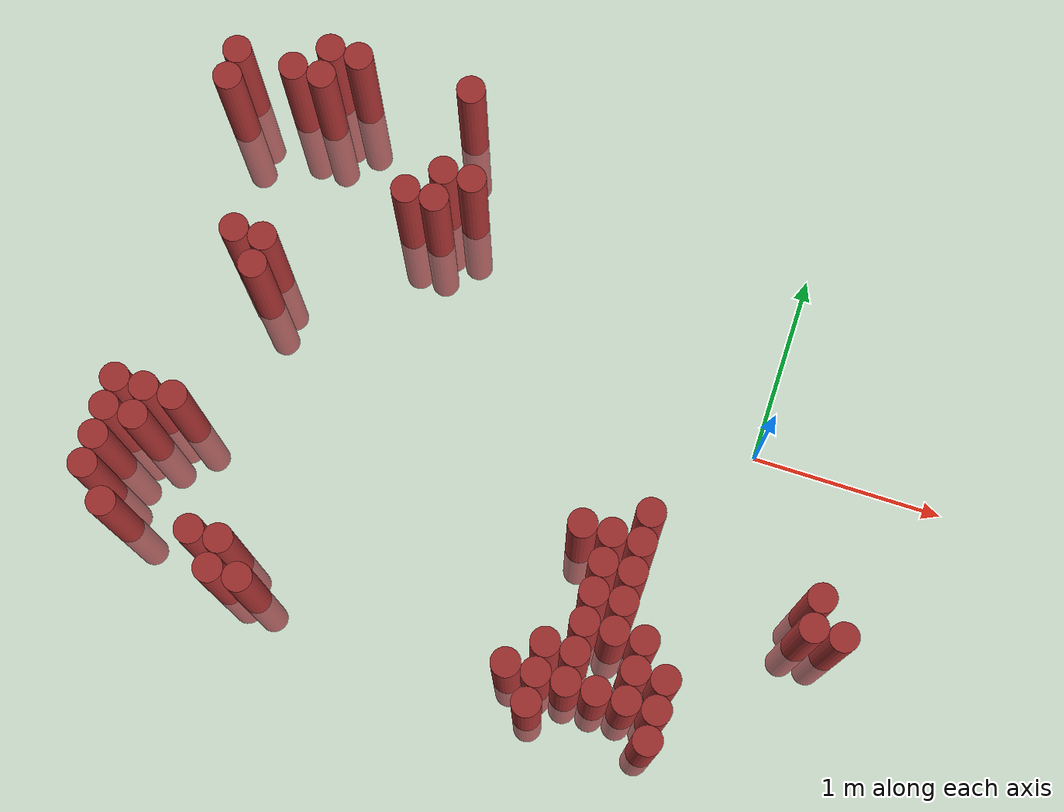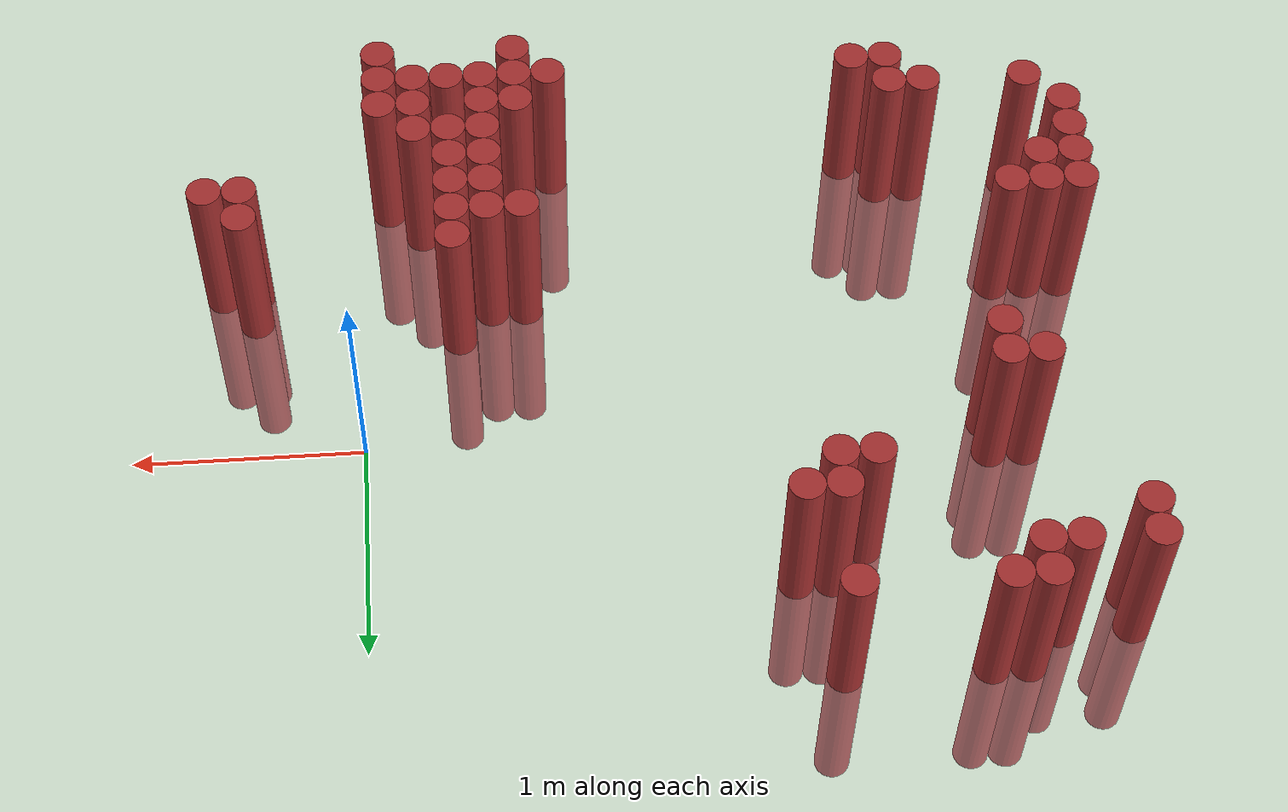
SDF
<sdf version="1.6">
 <world name="default">
  <model name="ground_plane">
   <static>1</static>
   <link name="link">
    <collision name="collision">
     <geometry><plane><normal>0 0 1</normal><size>100 100</size></plane></geometry>
     <surface><friction><ode><mu>100</mu><mu2>50</mu2></ode></friction></surface>
    </collision>
    <visual name="visual">
     <cast_shadows>0</cast_shadows>
     <geometry><plane><normal>0 0 1</normal><size>100 100</size></plane></geometry>
     <material>
      <script><uri>file://media/materials/scripts/gazebo.material</uri><name>Gazebo/Grey</name></script>
     </material>
    </visual>
   </link>
  </model>
  <model name="unit_cylinder_289">
   <static>1</static>
   <pose>-3.125000 -1.175000 0.000000 0.000000 0.000000 0.000000</pose>
   <link name="link">
    <inertial>
     <mass>1</mass>
     <inertia><ixx>0.145833</ixx><ixy>0</ixy><ixz>0</ixz><iyy>0.145833</iyy><iyz>0</iyz><izz>0.125</izz></inertia>
    </inertial>
    <collision name="collision">
     <geometry><cylinder><radius>0.075000</radius><length>1.5</length></cylinder></geometry>
    </collision>
    <visual name="visual">
     <geometry><cylinder><radius>0.075000</radius><length>1.5</length></cylinder></geometry>
     <material>
      <ambient>0.648000 0.192000 0.192000 1</ambient>
      <diffuse>0.648000 0.192000 0.192000 1</diffuse>
     </material>
     <material>
      <script><name>Gazebo/Grey</name><uri>file://media/materials/scripts/gazebo.material</uri></script>
     </material>
    </visual>
   </link>
  </model>
  <model name="unit_cylinder_290">
   <static>1</static>
   <pose>-3.125000 -1.025000 0.000000 0.000000 0.000000 0.000000</pose>
   <link name="link">
    <inertial>
     <mass>1</mass>
     <inertia><ixx>0.145833</ixx><ixy>0</ixy><ixz>0</ixz><iyy>0.145833</iyy><iyz>0</iyz><izz>0.125</izz></inertia>
    </inertial>
    <collision name="collision">
     <geometry><cylinder><radius>0.075000</radius><length>1.5</length></cylinder></geometry>
    </collision>
    <visual name="visual">
     <geometry><cylinder><radius>0.075000</radius><length>1.5</length></cylinder></geometry>
     <material>
      <ambient>0.648000 0.192000 0.192000 1</ambient>
      <diffuse>0.648000 0.192000 0.192000 1</diffuse>
     </material>
     <material>
      <script><name>Gazebo/Grey</name><uri>file://media/materials/scripts/gazebo.material</uri></script>
     </material>
    </visual>
   </link>
  </model>
  <model name="unit_cylinder_291">
   <static>1</static>
   <pose>-3.125000 -0.875000 0.000000 0.000000 0.000000 0.000000</pose>
   <link name="link">
    <inertial>
     <mass>1</mass>
     <inertia><ixx>0.145833</ixx><ixy>0</ixy><ixz>0</ixz><iyy>0.145833</iyy><iyz>0</iyz><izz>0.125</izz></inertia>
    </inertial>
    <collision name="collision">
     <geometry><cylinder><radius>0.075000</radius><length>1.5</length></cylinder></geometry>
    </collision>
    <visual name="visual">
     <geometry><cylinder><radius>0.075000</radius><length>1.5</length></cylinder></geometry>
     <material>
      <ambient>0.648000 0.192000 0.192000 1</ambient>
      <diffuse>0.648000 0.192000 0.192000 1</diffuse>
     </material>
     <material>
      <script><name>Gazebo/Grey</name><uri>file://media/materials/scripts/gazebo.material</uri></script>
     </material>
    </visual>
   </link>
  </model>
  <model name="unit_cylinder_292">
   <static>1</static>
   <pose>-3.125000 -0.725000 0.000000 0.000000 0.000000 0.000000</pose>
   <link name="link">
    <inertial>
     <mass>1</mass>
     <inertia><ixx>0.145833</ixx><ixy>0</ixy><ixz>0</ixz><iyy>0.145833</iyy><iyz>0</iyz><izz>0.125</izz></inertia>
    </inertial>
    <collision name="collision">
     <geometry><cylinder><radius>0.075000</radius><length>1.5</length></cylinder></geometry>
    </collision>
    <visual name="visual">
     <geometry><cylinder><radius>0.075000</radius><length>1.5</length></cylinder></geometry>
     <material>
      <ambient>0.648000 0.192000 0.192000 1</ambient>
      <diffuse>0.648000 0.192000 0.192000 1</diffuse>
     </material>
     <material>
      <script><name>Gazebo/Grey</name><uri>file://media/materials/scripts/gazebo.material</uri></script>
     </material>
    </visual>
   </link>
  </model>
  <model name="unit_cylinder_293">
   <static>1</static>
   <pose>-3.125000 0.925000 0.000000 0.000000 0.000000 0.000000</pose>
   <link name="link">
    <inertial>
     <mass>1</mass>
     <inertia><ixx>0.145833</ixx><ixy>0</ixy><ixz>0</ixz><iyy>0.145833</iyy><iyz>0</iyz><izz>0.125</izz></inertia>
    </inertial>
    <collision name="collision">
     <geometry><cylinder><radius>0.075000</radius><length>1.5</length></cylinder></geometry>
    </collision>
    <visual name="visual">
     <geometry><cylinder><radius>0.075000</radius><length>1.5</length></cylinder></geometry>
     <material>
      <ambient>0.648000 0.192000 0.192000 1</ambient>
      <diffuse>0.648000 0.192000 0.192000 1</diffuse>
     </material>
     <material>
      <script><name>Gazebo/Grey</name><uri>file://media/materials/scripts/gazebo.material</uri></script>
     </material>
    </visual>
   </link>
  </model>
  <model name="unit_cylinder_294">
   <static>1</static>
   <pose>-3.125000 1.075000 0.000000 0.000000 0.000000 0.000000</pose>
   <link name="link">
    <inertial>
     <mass>1</mass>
     <inertia><ixx>0.145833</ixx><ixy>0</ixy><ixz>0</ixz><iyy>0.145833</iyy><iyz>0</iyz><izz>0.125</izz></inertia>
    </inertial>
    <collision name="collision">
     <geometry><cylinder><radius>0.075000</radius><length>1.5</length></cylinder></geometry>
    </collision>
    <visual name="visual">
     <geometry><cylinder><radius>0.075000</radius><length>1.5</length></cylinder></geometry>
     <material>
      <ambient>0.648000 0.192000 0.192000 1</ambient>
      <diffuse>0.648000 0.192000 0.192000 1</diffuse>
     </material>
     <material>
      <script><name>Gazebo/Grey</name><uri>file://media/materials/scripts/gazebo.material</uri></script>
     </material>
    </visual>
   </link>
  </model>
  <model name="unit_cylinder_305">
   <static>1</static>
   <pose>-2.975000 -1.325000 0.000000 0.000000 0.000000 0.000000</pose>
   <link name="link">
    <inertial>
     <mass>1</mass>
     <inertia><ixx>0.145833</ixx><ixy>0</ixy><ixz>0</ixz><iyy>0.145833</iyy><iyz>0</iyz><izz>0.125</izz></inertia>
    </inertial>
    <collision name="collision">
     <geometry><cylinder><radius>0.075000</radius><length>1.5</length></cylinder></geometry>
    </collision>
    <visual name="visual">
     <geometry><cylinder><radius>0.075000</radius><length>1.5</length></cylinder></geometry>
     <material>
      <ambient>0.648000 0.192000 0.192000 1</ambient>
      <diffuse>0.648000 0.192000 0.192000 1</diffuse>
     </material>
     <material>
      <script><name>Gazebo/Grey</name><uri>file://media/materials/scripts/gazebo.material</uri></script>
     </material>
    </visual>
   </link>
  </model>
  <model name="unit_cylinder_306">
   <static>1</static>
   <pose>-2.975000 -0.875000 0.000000 0.000000 0.000000 0.000000</pose>
   <link name="link">
    <inertial>
     <mass>1</mass>
     <inertia><ixx>0.145833</ixx><ixy>0</ixy><ixz>0</ixz><iyy>0.145833</iyy><iyz>0</iyz><izz>0.125</izz></inertia>
    </inertial>
    <collision name="collision">
     <geometry><cylinder><radius>0.075000</radius><length>1.5</length></cylinder></geometry>
    </collision>
    <visual name="visual">
     <geometry><cylinder><radius>0.075000</radius><length>1.5</length></cylinder></geometry>
     <material>
      <ambient>0.648000 0.192000 0.192000 1</ambient>
      <diffuse>0.648000 0.192000 0.192000 1</diffuse>
     </material>
     <material>
      <script><name>Gazebo/Grey</name><uri>file://media/materials/scripts/gazebo.material</uri></script>
     </material>
    </visual>
   </link>
  </model>
  <model name="unit_cylinder_307">
   <static>1</static>
   <pose>-2.975000 -0.725000 0.000000 0.000000 0.000000 0.000000</pose>
   <link name="link">
    <inertial>
     <mass>1</mass>
     <inertia><ixx>0.145833</ixx><ixy>0</ixy><ixz>0</ixz><iyy>0.145833</iyy><iyz>0</iyz><izz>0.125</izz></inertia>
    </inertial>
    <collision name="collision">
     <geometry><cylinder><radius>0.075000</radius><length>1.5</length></cylinder></geometry>
    </collision>
    <visual name="visual">
     <geometry><cylinder><radius>0.075000</radius><length>1.5</length></cylinder></geometry>
     <material>
      <ambient>0.648000 0.192000 0.192000 1</ambient>
      <diffuse>0.648000 0.192000 0.192000 1</diffuse>
     </material>
     <material>
      <script><name>Gazebo/Grey</name><uri>file://media/materials/scripts/gazebo.material</uri></script>
     </material>
    </visual>
   </link>
  </model>
  <model name="unit_cylinder_309">
   <static>1</static>
   <pose>-2.825000 -0.725000 0.000000 0.000000 0.000000 0.000000</pose>
   <link name="link">
    <inertial>
     <mass>1</mass>
     <inertia><ixx>0.145833</ixx><ixy>0</ixy><ixz>0</ixz><iyy>0.145833</iyy><iyz>0</iyz><izz>0.125</izz></inertia>
    </inertial>
    <collision name="collision">
     <geometry><cylinder><radius>0.075000</radius><length>1.5</length></cylinder></geometry>
    </collision>
    <visual name="visual">
     <geometry><cylinder><radius>0.075000</radius><length>1.5</length></cylinder></geometry>
     <material>
      <ambient>0.648000 0.192000 0.192000 1</ambient>
      <diffuse>0.648000 0.192000 0.192000 1</diffuse>
     </material>
     <material>
      <script><name>Gazebo/Grey</name><uri>file://media/materials/scripts/gazebo.material</uri></script>
     </material>
    </visual>
   </link>
  </model>
  <model name="unit_cylinder_310">
   <static>1</static>
   <pose>-2.825000 0.175000 0.000000 0.000000 0.000000 0.000000</pose>
   <link name="link">
    <inertial>
     <mass>1</mass>
     <inertia><ixx>0.145833</ixx><ixy>0</ixy><ixz>0</ixz><iyy>0.145833</iyy><iyz>0</iyz><izz>0.125</izz></inertia>
    </inertial>
    <collision name="collision">
     <geometry><cylinder><radius>0.075000</radius><length>1.5</length></cylinder></geometry>
    </collision>
    <visual name="visual">
     <geometry><cylinder><radius>0.075000</radius><length>1.5</length></cylinder></geometry>
     <material>
      <ambient>0.648000 0.192000 0.192000 1</ambient>
      <diffuse>0.648000 0.192000 0.192000 1</diffuse>
     </material>
     <material>
      <script><name>Gazebo/Grey</name><uri>file://media/materials/scripts/gazebo.material</uri></script>
     </material>
    </visual>
   </link>
  </model>
  <model name="unit_cylinder_311">
   <static>1</static>
   <pose>-2.825000 1.075000 0.000000 0.000000 0.000000 0.000000</pose>
   <link name="link">
    <inertial>
     <mass>1</mass>
     <inertia><ixx>0.145833</ixx><ixy>0</ixy><ixz>0</ixz><iyy>0.145833</iyy><iyz>0</iyz><izz>0.125</izz></inertia>
    </inertial>
    <collision name="collision">
     <geometry><cylinder><radius>0.075000</radius><length>1.5</length></cylinder></geometry>
    </collision>
    <visual name="visual">
     <geometry><cylinder><radius>0.075000</radius><length>1.5</length></cylinder></geometry>
     <material>
      <ambient>0.648000 0.192000 0.192000 1</ambient>
      <diffuse>0.648000 0.192000 0.192000 1</diffuse>
     </material>
     <material>
      <script><name>Gazebo/Grey</name><uri>file://media/materials/scripts/gazebo.material</uri></script>
     </material>
    </visual>
   </link>
  </model>
  <model name="unit_cylinder_312">
   <static>1</static>
   <pose>-2.675000 0.025000 0.000000 0.000000 0.000000 0.000000</pose>
   <link name="link">
    <inertial>
     <mass>1</mass>
     <inertia><ixx>0.145833</ixx><ixy>0</ixy><ixz>0</ixz><iyy>0.145833</iyy><iyz>0</iyz><izz>0.125</izz></inertia>
    </inertial>
    <collision name="collision">
     <geometry><cylinder><radius>0.075000</radius><length>1.5</length></cylinder></geometry>
    </collision>
    <visual name="visual">
     <geometry><cylinder><radius>0.075000</radius><length>1.5</length></cylinder></geometry>
     <material>
      <ambient>0.648000 0.192000 0.192000 1</ambient>
      <diffuse>0.648000 0.192000 0.192000 1</diffuse>
     </material>
     <material>
      <script><name>Gazebo/Grey</name><uri>file://media/materials/scripts/gazebo.material</uri></script>
     </material>
    </visual>
   </link>
  </model>
  <model name="unit_cylinder_313">
   <static>1</static>
   <pose>-2.675000 0.175000 0.000000 0.000000 0.000000 0.000000</pose>
   <link name="link">
    <inertial>
     <mass>1</mass>
     <inertia><ixx>0.145833</ixx><ixy>0</ixy><ixz>0</ixz><iyy>0.145833</iyy><iyz>0</iyz><izz>0.125</izz></inertia>
    </inertial>
    <collision name="collision">
     <geometry><cylinder><radius>0.075000</radius><length>1.5</length></cylinder></geometry>
    </collision>
    <visual name="visual">
     <geometry><cylinder><radius>0.075000</radius><length>1.5</length></cylinder></geometry>
     <material>
      <ambient>0.648000 0.192000 0.192000 1</ambient>
      <diffuse>0.648000 0.192000 0.192000 1</diffuse>
     </material>
     <material>
      <script><name>Gazebo/Grey</name><uri>file://media/materials/scripts/gazebo.material</uri></script>
     </material>
    </visual>
   </link>
  </model>
  <model name="unit_cylinder_314">
   <static>1</static>
   <pose>-2.675000 1.075000 0.000000 0.000000 0.000000 0.000000</pose>
   <link name="link">
    <inertial>
     <mass>1</mass>
     <inertia><ixx>0.145833</ixx><ixy>0</ixy><ixz>0</ixz><iyy>0.145833</iyy><iyz>0</iyz><izz>0.125</izz></inertia>
    </inertial>
    <collision name="collision">
     <geometry><cylinder><radius>0.075000</radius><length>1.5</length></cylinder></geometry>
    </collision>
    <visual name="visual">
     <geometry><cylinder><radius>0.075000</radius><length>1.5</length></cylinder></geometry>
     <material>
      <ambient>0.648000 0.192000 0.192000 1</ambient>
      <diffuse>0.648000 0.192000 0.192000 1</diffuse>
     </material>
     <material>
      <script><name>Gazebo/Grey</name><uri>file://media/materials/scripts/gazebo.material</uri></script>
     </material>
    </visual>
   </link>
  </model>
  <model name="unit_cylinder_315">
   <static>1</static>
   <pose>-2.675000 1.225000 0.000000 0.000000 0.000000 0.000000</pose>
   <link name="link">
    <inertial>
     <mass>1</mass>
     <inertia><ixx>0.145833</ixx><ixy>0</ixy><ixz>0</ixz><iyy>0.145833</iyy><iyz>0</iyz><izz>0.125</izz></inertia>
    </inertial>
    <collision name="collision">
     <geometry><cylinder><radius>0.075000</radius><length>1.5</length></cylinder></geometry>
    </collision>
    <visual name="visual">
     <geometry><cylinder><radius>0.075000</radius><length>1.5</length></cylinder></geometry>
     <material>
      <ambient>0.648000 0.192000 0.192000 1</ambient>
      <diffuse>0.648000 0.192000 0.192000 1</diffuse>
     </material>
     <material>
      <script><name>Gazebo/Grey</name><uri>file://media/materials/scripts/gazebo.material</uri></script>
     </material>
    </visual>
   </link>
  </model>
  <model name="unit_cylinder_317">
   <static>1</static>
   <pose>-2.525000 -1.325000 0.000000 0.000000 0.000000 0.000000</pose>
   <link name="link">
    <inertial>
     <mass>1</mass>
     <inertia><ixx>0.145833</ixx><ixy>0</ixy><ixz>0</ixz><iyy>0.145833</iyy><iyz>0</iyz><izz>0.125</izz></inertia>
    </inertial>
    <collision name="collision">
     <geometry><cylinder><radius>0.075000</radius><length>1.5</length></cylinder></geometry>
    </collision>
    <visual name="visual">
     <geometry><cylinder><radius>0.075000</radius><length>1.5</length></cylinder></geometry>
     <material>
      <ambient>0.648000 0.192000 0.192000 1</ambient>
      <diffuse>0.648000 0.192000 0.192000 1</diffuse>
     </material>
     <material>
      <script><name>Gazebo/Grey</name><uri>file://media/materials/scripts/gazebo.material</uri></script>
     </material>
    </visual>
   </link>
  </model>
  <model name="unit_cylinder_318">
   <static>1</static>
   <pose>-2.525000 1.225000 0.000000 0.000000 0.000000 0.000000</pose>
   <link name="link">
    <inertial>
     <mass>1</mass>
     <inertia><ixx>0.145833</ixx><ixy>0</ixy><ixz>0</ixz><iyy>0.145833</iyy><iyz>0</iyz><izz>0.125</izz></inertia>
    </inertial>
    <collision name="collision">
     <geometry><cylinder><radius>0.075000</radius><length>1.5</length></cylinder></geometry>
    </collision>
    <visual name="visual">
     <geometry><cylinder><radius>0.075000</radius><length>1.5</length></cylinder></geometry>
     <material>
      <ambient>0.648000 0.192000 0.192000 1</ambient>
      <diffuse>0.648000 0.192000 0.192000 1</diffuse>
     </material>
     <material>
      <script><name>Gazebo/Grey</name><uri>file://media/materials/scripts/gazebo.material</uri></script>
     </material>
    </visual>
   </link>
  </model>
  <model name="unit_cylinder_323">
   <static>1</static>
   <pose>-2.375000 -1.475000 0.000000 0.000000 0.000000 0.000000</pose>
   <link name="link">
    <inertial>
     <mass>1</mass>
     <inertia><ixx>0.145833</ixx><ixy>0</ixy><ixz>0</ixz><iyy>0.145833</iyy><iyz>0</iyz><izz>0.125</izz></inertia>
    </inertial>
    <collision name="collision">
     <geometry><cylinder><radius>0.075000</radius><length>1.5</length></cylinder></geometry>
    </collision>
    <visual name="visual">
     <geometry><cylinder><radius>0.075000</radius><length>1.5</length></cylinder></geometry>
     <material>
      <ambient>0.648000 0.192000 0.192000 1</ambient>
      <diffuse>0.648000 0.192000 0.192000 1</diffuse>
     </material>
     <material>
      <script><name>Gazebo/Grey</name><uri>file://media/materials/scripts/gazebo.material</uri></script>
     </material>
    </visual>
   </link>
  </model>
  <model name="unit_cylinder_324">
   <static>1</static>
   <pose>-2.375000 -1.325000 0.000000 0.000000 0.000000 0.000000</pose>
   <link name="link">
    <inertial>
     <mass>1</mass>
     <inertia><ixx>0.145833</ixx><ixy>0</ixy><ixz>0</ixz><iyy>0.145833</iyy><iyz>0</iyz><izz>0.125</izz></inertia>
    </inertial>
    <collision name="collision">
     <geometry><cylinder><radius>0.075000</radius><length>1.5</length></cylinder></geometry>
    </collision>
    <visual name="visual">
     <geometry><cylinder><radius>0.075000</radius><length>1.5</length></cylinder></geometry>
     <material>
      <ambient>0.648000 0.192000 0.192000 1</ambient>
      <diffuse>0.648000 0.192000 0.192000 1</diffuse>
     </material>
     <material>
      <script><name>Gazebo/Grey</name><uri>file://media/materials/scripts/gazebo.material</uri></script>
     </material>
    </visual>
   </link>
  </model>
  <model name="unit_cylinder_327">
   <static>1</static>
   <pose>-2.225000 -1.475000 0.000000 0.000000 0.000000 0.000000</pose>
   <link name="link">
    <inertial>
     <mass>1</mass>
     <inertia><ixx>0.145833</ixx><ixy>0</ixy><ixz>0</ixz><iyy>0.145833</iyy><iyz>0</iyz><izz>0.125</izz></inertia>
    </inertial>
    <collision name="collision">
     <geometry><cylinder><radius>0.075000</radius><length>1.5</length></cylinder></geometry>
    </collision>
    <visual name="visual">
     <geometry><cylinder><radius>0.075000</radius><length>1.5</length></cylinder></geometry>
     <material>
      <ambient>0.648000 0.192000 0.192000 1</ambient>
      <diffuse>0.648000 0.192000 0.192000 1</diffuse>
     </material>
     <material>
      <script><name>Gazebo/Grey</name><uri>file://media/materials/scripts/gazebo.material</uri></script>
     </material>
    </visual>
   </link>
  </model>
  <model name="unit_cylinder_331">
   <static>1</static>
   <pose>-2.075000 0.625000 0.000000 0.000000 0.000000 0.000000</pose>
   <link name="link">
    <inertial>
     <mass>1</mass>
     <inertia><ixx>0.145833</ixx><ixy>0</ixy><ixz>0</ixz><iyy>0.145833</iyy><iyz>0</iyz><izz>0.125</izz></inertia>
    </inertial>
    <collision name="collision">
     <geometry><cylinder><radius>0.075000</radius><length>1.5</length></cylinder></geometry>
    </collision>
    <visual name="visual">
     <geometry><cylinder><radius>0.075000</radius><length>1.5</length></cylinder></geometry>
     <material>
      <ambient>0.648000 0.192000 0.192000 1</ambient>
      <diffuse>0.648000 0.192000 0.192000 1</diffuse>
     </material>
     <material>
      <script><name>Gazebo/Grey</name><uri>file://media/materials/scripts/gazebo.material</uri></script>
     </material>
    </visual>
   </link>
  </model>
  <model name="unit_cylinder_333">
   <static>1</static>
   <pose>-1.925000 0.625000 0.000000 0.000000 0.000000 0.000000</pose>
   <link name="link">
    <inertial>
     <mass>1</mass>
     <inertia><ixx>0.145833</ixx><ixy>0</ixy><ixz>0</ixz><iyy>0.145833</iyy><iyz>0</iyz><izz>0.125</izz></inertia>
    </inertial>
    <collision name="collision">
     <geometry><cylinder><radius>0.075000</radius><length>1.5</length></cylinder></geometry>
    </collision>
    <visual name="visual">
     <geometry><cylinder><radius>0.075000</radius><length>1.5</length></cylinder></geometry>
     <material>
      <ambient>0.648000 0.192000 0.192000 1</ambient>
      <diffuse>0.648000 0.192000 0.192000 1</diffuse>
     </material>
     <material>
      <script><name>Gazebo/Grey</name><uri>file://media/materials/scripts/gazebo.material</uri></script>
     </material>
    </visual>
   </link>
  </model>
  <model name="unit_cylinder_334">
   <static>1</static>
   <pose>-1.925000 0.775000 0.000000 0.000000 0.000000 0.000000</pose>
   <link name="link">
    <inertial>
     <mass>1</mass>
     <inertia><ixx>0.145833</ixx><ixy>0</ixy><ixz>0</ixz><iyy>0.145833</iyy><iyz>0</iyz><izz>0.125</izz></inertia>
    </inertial>
    <collision name="collision">
     <geometry><cylinder><radius>0.075000</radius><length>1.5</length></cylinder></geometry>
    </collision>
    <visual name="visual">
     <geometry><cylinder><radius>0.075000</radius><length>1.5</length></cylinder></geometry>
     <material>
      <ambient>0.648000 0.192000 0.192000 1</ambient>
      <diffuse>0.648000 0.192000 0.192000 1</diffuse>
     </material>
     <material>
      <script><name>Gazebo/Grey</name><uri>file://media/materials/scripts/gazebo.material</uri></script>
     </material>
    </visual>
   </link>
  </model>
  <model name="unit_cylinder_335">
   <static>1</static>
   <pose>-1.925000 1.225000 0.000000 0.000000 0.000000 0.000000</pose>
   <link name="link">
    <inertial>
     <mass>1</mass>
     <inertia><ixx>0.145833</ixx><ixy>0</ixy><ixz>0</ixz><iyy>0.145833</iyy><iyz>0</iyz><izz>0.125</izz></inertia>
    </inertial>
    <collision name="collision">
     <geometry><cylinder><radius>0.075000</radius><length>1.5</length></cylinder></geometry>
    </collision>
    <visual name="visual">
     <geometry><cylinder><radius>0.075000</radius><length>1.5</length></cylinder></geometry>
     <material>
      <ambient>0.648000 0.192000 0.192000 1</ambient>
      <diffuse>0.648000 0.192000 0.192000 1</diffuse>
     </material>
     <material>
      <script><name>Gazebo/Grey</name><uri>file://media/materials/scripts/gazebo.material</uri></script>
     </material>
    </visual>
   </link>
  </model>
  <model name="unit_cylinder_337">
   <static>1</static>
   <pose>-1.775000 0.775000 0.000000 0.000000 0.000000 0.000000</pose>
   <link name="link">
    <inertial>
     <mass>1</mass>
     <inertia><ixx>0.145833</ixx><ixy>0</ixy><ixz>0</ixz><iyy>0.145833</iyy><iyz>0</iyz><izz>0.125</izz></inertia>
    </inertial>
    <collision name="collision">
     <geometry><cylinder><radius>0.075000</radius><length>1.5</length></cylinder></geometry>
    </collision>
    <visual name="visual">
     <geometry><cylinder><radius>0.075000</radius><length>1.5</length></cylinder></geometry>
     <material>
      <ambient>0.648000 0.192000 0.192000 1</ambient>
      <diffuse>0.648000 0.192000 0.192000 1</diffuse>
     </material>
     <material>
      <script><name>Gazebo/Grey</name><uri>file://media/materials/scripts/gazebo.material</uri></script>
     </material>
    </visual>
   </link>
  </model>
  <model name="unit_cylinder_353">
   <static>1</static>
   <pose>-0.875000 -1.475000 0.000000 0.000000 0.000000 0.000000</pose>
   <link name="link">
    <inertial>
     <mass>1</mass>
     <inertia><ixx>0.145833</ixx><ixy>0</ixy><ixz>0</ixz><iyy>0.145833</iyy><iyz>0</iyz><izz>0.125</izz></inertia>
    </inertial>
    <collision name="collision">
     <geometry><cylinder><radius>0.075000</radius><length>1.5</length></cylinder></geometry>
    </collision>
    <visual name="visual">
     <geometry><cylinder><radius>0.075000</radius><length>1.5</length></cylinder></geometry>
     <material>
      <ambient>0.648000 0.192000 0.192000 1</ambient>
      <diffuse>0.648000 0.192000 0.192000 1</diffuse>
     </material>
     <material>
      <script><name>Gazebo/Grey</name><uri>file://media/materials/scripts/gazebo.material</uri></script>
     </material>
    </visual>
   </link>
  </model>
  <model name="unit_cylinder_354">
   <static>1</static>
   <pose>-0.725000 -1.625000 0.000000 0.000000 0.000000 0.000000</pose>
   <link name="link">
    <inertial>
     <mass>1</mass>
     <inertia><ixx>0.145833</ixx><ixy>0</ixy><ixz>0</ixz><iyy>0.145833</iyy><iyz>0</iyz><izz>0.125</izz></inertia>
    </inertial>
    <collision name="collision">
     <geometry><cylinder><radius>0.075000</radius><length>1.5</length></cylinder></geometry>
    </collision>
    <visual name="visual">
     <geometry><cylinder><radius>0.075000</radius><length>1.5</length></cylinder></geometry>
     <material>
      <ambient>0.648000 0.192000 0.192000 1</ambient>
      <diffuse>0.648000 0.192000 0.192000 1</diffuse>
     </material>
     <material>
      <script><name>Gazebo/Grey</name><uri>file://media/materials/scripts/gazebo.material</uri></script>
     </material>
    </visual>
   </link>
  </model>
  <model name="unit_cylinder_355">
   <static>1</static>
   <pose>-0.725000 -1.475000 0.000000 0.000000 0.000000 0.000000</pose>
   <link name="link">
    <inertial>
     <mass>1</mass>
     <inertia><ixx>0.145833</ixx><ixy>0</ixy><ixz>0</ixz><iyy>0.145833</iyy><iyz>0</iyz><izz>0.125</izz></inertia>
    </inertial>
    <collision name="collision">
     <geometry><cylinder><radius>0.075000</radius><length>1.5</length></cylinder></geometry>
    </collision>
    <visual name="visual">
     <geometry><cylinder><radius>0.075000</radius><length>1.5</length></cylinder></geometry>
     <material>
      <ambient>0.648000 0.192000 0.192000 1</ambient>
      <diffuse>0.648000 0.192000 0.192000 1</diffuse>
     </material>
     <material>
      <script><name>Gazebo/Grey</name><uri>file://media/materials/scripts/gazebo.material</uri></script>
     </material>
    </visual>
   </link>
  </model>
  <model name="unit_cylinder_356">
   <static>1</static>
   <pose>-0.725000 -1.325000 0.000000 0.000000 0.000000 0.000000</pose>
   <link name="link">
    <inertial>
     <mass>1</mass>
     <inertia><ixx>0.145833</ixx><ixy>0</ixy><ixz>0</ixz><iyy>0.145833</iyy><iyz>0</iyz><izz>0.125</izz></inertia>
    </inertial>
    <collision name="collision">
     <geometry><cylinder><radius>0.075000</radius><length>1.5</length></cylinder></geometry>
    </collision>
    <visual name="visual">
     <geometry><cylinder><radius>0.075000</radius><length>1.5</length></cylinder></geometry>
     <material>
      <ambient>0.648000 0.192000 0.192000 1</ambient>
      <diffuse>0.648000 0.192000 0.192000 1</diffuse>
     </material>
     <material>
      <script><name>Gazebo/Grey</name><uri>file://media/materials/scripts/gazebo.material</uri></script>
     </material>
    </visual>
   </link>
  </model>
  <model name="unit_cylinder_357">
   <static>1</static>
   <pose>-0.725000 -0.725000 0.000000 0.000000 0.000000 0.000000</pose>
   <link name="link">
    <inertial>
     <mass>1</mass>
     <inertia><ixx>0.145833</ixx><ixy>0</ixy><ixz>0</ixz><iyy>0.145833</iyy><iyz>0</iyz><izz>0.125</izz></inertia>
    </inertial>
    <collision name="collision">
     <geometry><cylinder><radius>0.075000</radius><length>1.5</length></cylinder></geometry>
    </collision>
    <visual name="visual">
     <geometry><cylinder><radius>0.075000</radius><length>1.5</length></cylinder></geometry>
     <material>
      <ambient>0.648000 0.192000 0.192000 1</ambient>
      <diffuse>0.648000 0.192000 0.192000 1</diffuse>
     </material>
     <material>
      <script><name>Gazebo/Grey</name><uri>file://media/materials/scripts/gazebo.material</uri></script>
     </material>
    </visual>
   </link>
  </model>
  <model name="unit_cylinder_358">
   <static>1</static>
   <pose>-0.575000 -1.475000 0.000000 0.000000 0.000000 0.000000</pose>
   <link name="link">
    <inertial>
     <mass>1</mass>
     <inertia><ixx>0.145833</ixx><ixy>0</ixy><ixz>0</ixz><iyy>0.145833</iyy><iyz>0</iyz><izz>0.125</izz></inertia>
    </inertial>
    <collision name="collision">
     <geometry><cylinder><radius>0.075000</radius><length>1.5</length></cylinder></geometry>
    </collision>
    <visual name="visual">
     <geometry><cylinder><radius>0.075000</radius><length>1.5</length></cylinder></geometry>
     <material>
      <ambient>0.648000 0.192000 0.192000 1</ambient>
      <diffuse>0.648000 0.192000 0.192000 1</diffuse>
     </material>
     <material>
      <script><name>Gazebo/Grey</name><uri>file://media/materials/scripts/gazebo.material</uri></script>
     </material>
    </visual>
   </link>
  </model>
  <model name="unit_cylinder_359">
   <static>1</static>
   <pose>-0.575000 -1.325000 0.000000 0.000000 0.000000 0.000000</pose>
   <link name="link">
    <inertial>
     <mass>1</mass>
     <inertia><ixx>0.145833</ixx><ixy>0</ixy><ixz>0</ixz><iyy>0.145833</iyy><iyz>0</iyz><izz>0.125</izz></inertia>
    </inertial>
    <collision name="collision">
     <geometry><cylinder><radius>0.075000</radius><length>1.5</length></cylinder></geometry>
    </collision>
    <visual name="visual">
     <geometry><cylinder><radius>0.075000</radius><length>1.5</length></cylinder></geometry>
     <material>
      <ambient>0.648000 0.192000 0.192000 1</ambient>
      <diffuse>0.648000 0.192000 0.192000 1</diffuse>
     </material>
     <material>
      <script><name>Gazebo/Grey</name><uri>file://media/materials/scripts/gazebo.material</uri></script>
     </material>
    </visual>
   </link>
  </model>
  <model name="unit_cylinder_360">
   <static>1</static>
   <pose>-0.575000 -1.175000 0.000000 0.000000 0.000000 0.000000</pose>
   <link name="link">
    <inertial>
     <mass>1</mass>
     <inertia><ixx>0.145833</ixx><ixy>0</ixy><ixz>0</ixz><iyy>0.145833</iyy><iyz>0</iyz><izz>0.125</izz></inertia>
    </inertial>
    <collision name="collision">
     <geometry><cylinder><radius>0.075000</radius><length>1.5</length></cylinder></geometry>
    </collision>
    <visual name="visual">
     <geometry><cylinder><radius>0.075000</radius><length>1.5</length></cylinder></geometry>
     <material>
      <ambient>0.648000 0.192000 0.192000 1</ambient>
      <diffuse>0.648000 0.192000 0.192000 1</diffuse>
     </material>
     <material>
      <script><name>Gazebo/Grey</name><uri>file://media/materials/scripts/gazebo.material</uri></script>
     </material>
    </visual>
   </link>
  </model>
  <model name="unit_cylinder_361">
   <static>1</static>
   <pose>-0.575000 -1.025000 0.000000 0.000000 0.000000 0.000000</pose>
   <link name="link">
    <inertial>
     <mass>1</mass>
     <inertia><ixx>0.145833</ixx><ixy>0</ixy><ixz>0</ixz><iyy>0.145833</iyy><iyz>0</iyz><izz>0.125</izz></inertia>
    </inertial>
    <collision name="collision">
     <geometry><cylinder><radius>0.075000</radius><length>1.5</length></cylinder></geometry>
    </collision>
    <visual name="visual">
     <geometry><cylinder><radius>0.075000</radius><length>1.5</length></cylinder></geometry>
     <material>
      <ambient>0.648000 0.192000 0.192000 1</ambient>
      <diffuse>0.648000 0.192000 0.192000 1</diffuse>
     </material>
     <material>
      <script><name>Gazebo/Grey</name><uri>file://media/materials/scripts/gazebo.material</uri></script>
     </material>
    </visual>
   </link>
  </model>
  <model name="unit_cylinder_362">
   <static>1</static>
   <pose>-0.575000 -0.875000 0.000000 0.000000 0.000000 0.000000</pose>
   <link name="link">
    <inertial>
     <mass>1</mass>
     <inertia><ixx>0.145833</ixx><ixy>0</ixy><ixz>0</ixz><iyy>0.145833</iyy><iyz>0</iyz><izz>0.125</izz></inertia>
    </inertial>
    <collision name="collision">
     <geometry><cylinder><radius>0.075000</radius><length>1.5</length></cylinder></geometry>
    </collision>
    <visual name="visual">
     <geometry><cylinder><radius>0.075000</radius><length>1.5</length></cylinder></geometry>
     <material>
      <ambient>0.648000 0.192000 0.192000 1</ambient>
      <diffuse>0.648000 0.192000 0.192000 1</diffuse>
     </material>
     <material>
      <script><name>Gazebo/Grey</name><uri>file://media/materials/scripts/gazebo.material</uri></script>
     </material>
    </visual>
   </link>
  </model>
  <model name="unit_cylinder_363">
   <static>1</static>
   <pose>-0.575000 -0.725000 0.000000 0.000000 0.000000 0.000000</pose>
   <link name="link">
    <inertial>
     <mass>1</mass>
     <inertia><ixx>0.145833</ixx><ixy>0</ixy><ixz>0</ixz><iyy>0.145833</iyy><iyz>0</iyz><izz>0.125</izz></inertia>
    </inertial>
    <collision name="collision">
     <geometry><cylinder><radius>0.075000</radius><length>1.5</length></cylinder></geometry>
    </collision>
    <visual name="visual">
     <geometry><cylinder><radius>0.075000</radius><length>1.5</length></cylinder></geometry>
     <material>
      <ambient>0.648000 0.192000 0.192000 1</ambient>
      <diffuse>0.648000 0.192000 0.192000 1</diffuse>
     </material>
     <material>
      <script><name>Gazebo/Grey</name><uri>file://media/materials/scripts/gazebo.material</uri></script>
     </material>
    </visual>
   </link>
  </model>
  <model name="unit_cylinder_365">
   <static>1</static>
   <pose>-0.425000 -1.475000 0.000000 0.000000 0.000000 0.000000</pose>
   <link name="link">
    <inertial>
     <mass>1</mass>
     <inertia><ixx>0.145833</ixx><ixy>0</ixy><ixz>0</ixz><iyy>0.145833</iyy><iyz>0</iyz><izz>0.125</izz></inertia>
    </inertial>
    <collision name="collision">
     <geometry><cylinder><radius>0.075000</radius><length>1.5</length></cylinder></geometry>
    </collision>
    <visual name="visual">
     <geometry><cylinder><radius>0.075000</radius><length>1.5</length></cylinder></geometry>
     <material>
      <ambient>0.648000 0.192000 0.192000 1</ambient>
      <diffuse>0.648000 0.192000 0.192000 1</diffuse>
     </material>
     <material>
      <script><name>Gazebo/Grey</name><uri>file://media/materials/scripts/gazebo.material</uri></script>
     </material>
    </visual>
   </link>
  </model>
  <model name="unit_cylinder_366">
   <static>1</static>
   <pose>-0.425000 -1.175000 0.000000 0.000000 0.000000 0.000000</pose>
   <link name="link">
    <inertial>
     <mass>1</mass>
     <inertia><ixx>0.145833</ixx><ixy>0</ixy><ixz>0</ixz><iyy>0.145833</iyy><iyz>0</iyz><izz>0.125</izz></inertia>
    </inertial>
    <collision name="collision">
     <geometry><cylinder><radius>0.075000</radius><length>1.5</length></cylinder></geometry>
    </collision>
    <visual name="visual">
     <geometry><cylinder><radius>0.075000</radius><length>1.5</length></cylinder></geometry>
     <material>
      <ambient>0.648000 0.192000 0.192000 1</ambient>
      <diffuse>0.648000 0.192000 0.192000 1</diffuse>
     </material>
     <material>
      <script><name>Gazebo/Grey</name><uri>file://media/materials/scripts/gazebo.material</uri></script>
     </material>
    </visual>
   </link>
  </model>
  <model name="unit_cylinder_367">
   <static>1</static>
   <pose>-0.425000 -1.025000 0.000000 0.000000 0.000000 0.000000</pose>
   <link name="link">
    <inertial>
     <mass>1</mass>
     <inertia><ixx>0.145833</ixx><ixy>0</ixy><ixz>0</ixz><iyy>0.145833</iyy><iyz>0</iyz><izz>0.125</izz></inertia>
    </inertial>
    <collision name="collision">
     <geometry><cylinder><radius>0.075000</radius><length>1.5</length></cylinder></geometry>
    </collision>
    <visual name="visual">
     <geometry><cylinder><radius>0.075000</radius><length>1.5</length></cylinder></geometry>
     <material>
      <ambient>0.648000 0.192000 0.192000 1</ambient>
      <diffuse>0.648000 0.192000 0.192000 1</diffuse>
     </material>
     <material>
      <script><name>Gazebo/Grey</name><uri>file://media/materials/scripts/gazebo.material</uri></script>
     </material>
    </visual>
   </link>
  </model>
  <model name="unit_cylinder_368">
   <static>1</static>
   <pose>-0.425000 -0.875000 0.000000 0.000000 0.000000 0.000000</pose>
   <link name="link">
    <inertial>
     <mass>1</mass>
     <inertia><ixx>0.145833</ixx><ixy>0</ixy><ixz>0</ixz><iyy>0.145833</iyy><iyz>0</iyz><izz>0.125</izz></inertia>
    </inertial>
    <collision name="collision">
     <geometry><cylinder><radius>0.075000</radius><length>1.5</length></cylinder></geometry>
    </collision>
    <visual name="visual">
     <geometry><cylinder><radius>0.075000</radius><length>1.5</length></cylinder></geometry>
     <material>
      <ambient>0.648000 0.192000 0.192000 1</ambient>
      <diffuse>0.648000 0.192000 0.192000 1</diffuse>
     </material>
     <material>
      <script><name>Gazebo/Grey</name><uri>file://media/materials/scripts/gazebo.material</uri></script>
     </material>
    </visual>
   </link>
  </model>
  <model name="unit_cylinder_369">
   <static>1</static>
   <pose>-0.425000 -0.725000 0.000000 0.000000 0.000000 0.000000</pose>
   <link name="link">
    <inertial>
     <mass>1</mass>
     <inertia><ixx>0.145833</ixx><ixy>0</ixy><ixz>0</ixz><iyy>0.145833</iyy><iyz>0</iyz><izz>0.125</izz></inertia>
    </inertial>
    <collision name="collision">
     <geometry><cylinder><radius>0.075000</radius><length>1.5</length></cylinder></geometry>
    </collision>
    <visual name="visual">
     <geometry><cylinder><radius>0.075000</radius><length>1.5</length></cylinder></geometry>
     <material>
      <ambient>0.648000 0.192000 0.192000 1</ambient>
      <diffuse>0.648000 0.192000 0.192000 1</diffuse>
     </material>
     <material>
      <script><name>Gazebo/Grey</name><uri>file://media/materials/scripts/gazebo.material</uri></script>
     </material>
    </visual>
   </link>
  </model>
  <model name="unit_cylinder_370">
   <static>1</static>
   <pose>-0.425000 -0.575000 0.000000 0.000000 0.000000 0.000000</pose>
   <link name="link">
    <inertial>
     <mass>1</mass>
     <inertia><ixx>0.145833</ixx><ixy>0</ixy><ixz>0</ixz><iyy>0.145833</iyy><iyz>0</iyz><izz>0.125</izz></inertia>
    </inertial>
    <collision name="collision">
     <geometry><cylinder><radius>0.075000</radius><length>1.5</length></cylinder></geometry>
    </collision>
    <visual name="visual">
     <geometry><cylinder><radius>0.075000</radius><length>1.5</length></cylinder></geometry>
     <material>
      <ambient>0.648000 0.192000 0.192000 1</ambient>
      <diffuse>0.648000 0.192000 0.192000 1</diffuse>
     </material>
     <material>
      <script><name>Gazebo/Grey</name><uri>file://media/materials/scripts/gazebo.material</uri></script>
     </material>
    </visual>
   </link>
  </model>
  <model name="unit_cylinder_373">
   <static>1</static>
   <pose>-0.275000 -1.475000 0.000000 0.000000 0.000000 0.000000</pose>
   <link name="link">
    <inertial>
     <mass>1</mass>
     <inertia><ixx>0.145833</ixx><ixy>0</ixy><ixz>0</ixz><iyy>0.145833</iyy><iyz>0</iyz><izz>0.125</izz></inertia>
    </inertial>
    <collision name="collision">
     <geometry><cylinder><radius>0.075000</radius><length>1.5</length></cylinder></geometry>
    </collision>
    <visual name="visual">
     <geometry><cylinder><radius>0.075000</radius><length>1.5</length></cylinder></geometry>
     <material>
      <ambient>0.648000 0.192000 0.192000 1</ambient>
      <diffuse>0.648000 0.192000 0.192000 1</diffuse>
     </material>
     <material>
      <script><name>Gazebo/Grey</name><uri>file://media/materials/scripts/gazebo.material</uri></script>
     </material>
    </visual>
   </link>
  </model>
  <model name="unit_cylinder_374">
   <static>1</static>
   <pose>-0.275000 -1.325000 0.000000 0.000000 0.000000 0.000000</pose>
   <link name="link">
    <inertial>
     <mass>1</mass>
     <inertia><ixx>0.145833</ixx><ixy>0</ixy><ixz>0</ixz><iyy>0.145833</iyy><iyz>0</iyz><izz>0.125</izz></inertia>
    </inertial>
    <collision name="collision">
     <geometry><cylinder><radius>0.075000</radius><length>1.5</length></cylinder></geometry>
    </collision>
    <visual name="visual">
     <geometry><cylinder><radius>0.075000</radius><length>1.5</length></cylinder></geometry>
     <material>
      <ambient>0.648000 0.192000 0.192000 1</ambient>
      <diffuse>0.648000 0.192000 0.192000 1</diffuse>
     </material>
     <material>
      <script><name>Gazebo/Grey</name><uri>file://media/materials/scripts/gazebo.material</uri></script>
     </material>
    </visual>
   </link>
  </model>
  <model name="unit_cylinder_375">
   <static>1</static>
   <pose>-0.275000 -1.175000 0.000000 0.000000 0.000000 0.000000</pose>
   <link name="link">
    <inertial>
     <mass>1</mass>
     <inertia><ixx>0.145833</ixx><ixy>0</ixy><ixz>0</ixz><iyy>0.145833</iyy><iyz>0</iyz><izz>0.125</izz></inertia>
    </inertial>
    <collision name="collision">
     <geometry><cylinder><radius>0.075000</radius><length>1.5</length></cylinder></geometry>
    </collision>
    <visual name="visual">
     <geometry><cylinder><radius>0.075000</radius><length>1.5</length></cylinder></geometry>
     <material>
      <ambient>0.648000 0.192000 0.192000 1</ambient>
      <diffuse>0.648000 0.192000 0.192000 1</diffuse>
     </material>
     <material>
      <script><name>Gazebo/Grey</name><uri>file://media/materials/scripts/gazebo.material</uri></script>
     </material>
    </visual>
   </link>
  </model>
  <model name="unit_cylinder_378">
   <static>1</static>
   <pose>-0.125000 -1.625000 0.000000 0.000000 0.000000 0.000000</pose>
   <link name="link">
    <inertial>
     <mass>1</mass>
     <inertia><ixx>0.145833</ixx><ixy>0</ixy><ixz>0</ixz><iyy>0.145833</iyy><iyz>0</iyz><izz>0.125</izz></inertia>
    </inertial>
    <collision name="collision">
     <geometry><cylinder><radius>0.075000</radius><length>1.5</length></cylinder></geometry>
    </collision>
    <visual name="visual">
     <geometry><cylinder><radius>0.075000</radius><length>1.5</length></cylinder></geometry>
     <material>
      <ambient>0.648000 0.192000 0.192000 1</ambient>
      <diffuse>0.648000 0.192000 0.192000 1</diffuse>
     </material>
     <material>
      <script><name>Gazebo/Grey</name><uri>file://media/materials/scripts/gazebo.material</uri></script>
     </material>
    </visual>
   </link>
  </model>
  <model name="unit_cylinder_379">
   <static>1</static>
   <pose>-0.125000 -1.475000 0.000000 0.000000 0.000000 0.000000</pose>
   <link name="link">
    <inertial>
     <mass>1</mass>
     <inertia><ixx>0.145833</ixx><ixy>0</ixy><ixz>0</ixz><iyy>0.145833</iyy><iyz>0</iyz><izz>0.125</izz></inertia>
    </inertial>
    <collision name="collision">
     <geometry><cylinder><radius>0.075000</radius><length>1.5</length></cylinder></geometry>
    </collision>
    <visual name="visual">
     <geometry><cylinder><radius>0.075000</radius><length>1.5</length></cylinder></geometry>
     <material>
      <ambient>0.648000 0.192000 0.192000 1</ambient>
      <diffuse>0.648000 0.192000 0.192000 1</diffuse>
     </material>
     <material>
      <script><name>Gazebo/Grey</name><uri>file://media/materials/scripts/gazebo.material</uri></script>
     </material>
    </visual>
   </link>
  </model>
  <model name="unit_cylinder_380">
   <static>1</static>
   <pose>-0.125000 -1.325000 0.000000 0.000000 0.000000 0.000000</pose>
   <link name="link">
    <inertial>
     <mass>1</mass>
     <inertia><ixx>0.145833</ixx><ixy>0</ixy><ixz>0</ixz><iyy>0.145833</iyy><iyz>0</iyz><izz>0.125</izz></inertia>
    </inertial>
    <collision name="collision">
     <geometry><cylinder><radius>0.075000</radius><length>1.5</length></cylinder></geometry>
    </collision>
    <visual name="visual">
     <geometry><cylinder><radius>0.075000</radius><length>1.5</length></cylinder></geometry>
     <material>
      <ambient>0.648000 0.192000 0.192000 1</ambient>
      <diffuse>0.648000 0.192000 0.192000 1</diffuse>
     </material>
     <material>
      <script><name>Gazebo/Grey</name><uri>file://media/materials/scripts/gazebo.material</uri></script>
     </material>
    </visual>
   </link>
  </model>
  <model name="unit_cylinder_389">
   <static>1</static>
   <pose>0.475000 -0.875000 0.000000 0.000000 0.000000 0.000000</pose>
   <link name="link">
    <inertial>
     <mass>1</mass>
     <inertia><ixx>0.145833</ixx><ixy>0</ixy><ixz>0</ixz><iyy>0.145833</iyy><iyz>0</iyz><izz>0.125</izz></inertia>
    </inertial>
    <collision name="collision">
     <geometry><cylinder><radius>0.075000</radius><length>1.5</length></cylinder></geometry>
    </collision>
    <visual name="visual">
     <geometry><cylinder><radius>0.075000</radius><length>1.5</length></cylinder></geometry>
     <material>
      <ambient>0.648000 0.192000 0.192000 1</ambient>
      <diffuse>0.648000 0.192000 0.192000 1</diffuse>
     </material>
     <material>
      <script><name>Gazebo/Grey</name><uri>file://media/materials/scripts/gazebo.material</uri></script>
     </material>
    </visual>
   </link>
  </model>
  <model name="unit_cylinder_390">
   <static>1</static>
   <pose>0.475000 -0.725000 0.000000 0.000000 0.000000 0.000000</pose>
   <link name="link">
    <inertial>
     <mass>1</mass>
     <inertia><ixx>0.145833</ixx><ixy>0</ixy><ixz>0</ixz><iyy>0.145833</iyy><iyz>0</iyz><izz>0.125</izz></inertia>
    </inertial>
    <collision name="collision">
     <geometry><cylinder><radius>0.075000</radius><length>1.5</length></cylinder></geometry>
    </collision>
    <visual name="visual">
     <geometry><cylinder><radius>0.075000</radius><length>1.5</length></cylinder></geometry>
     <material>
      <ambient>0.648000 0.192000 0.192000 1</ambient>
      <diffuse>0.648000 0.192000 0.192000 1</diffuse>
     </material>
     <material>
      <script><name>Gazebo/Grey</name><uri>file://media/materials/scripts/gazebo.material</uri></script>
     </material>
    </visual>
   </link>
  </model>
  <model name="unit_cylinder_393">
   <static>1</static>
   <pose>0.625000 -0.875000 0.000000 0.000000 0.000000 0.000000</pose>
   <link name="link">
    <inertial>
     <mass>1</mass>
     <inertia><ixx>0.145833</ixx><ixy>0</ixy><ixz>0</ixz><iyy>0.145833</iyy><iyz>0</iyz><izz>0.125</izz></inertia>
    </inertial>
    <collision name="collision">
     <geometry><cylinder><radius>0.075000</radius><length>1.5</length></cylinder></geometry>
    </collision>
    <visual name="visual">
     <geometry><cylinder><radius>0.075000</radius><length>1.5</length></cylinder></geometry>
     <material>
      <ambient>0.648000 0.192000 0.192000 1</ambient>
      <diffuse>0.648000 0.192000 0.192000 1</diffuse>
     </material>
     <material>
      <script><name>Gazebo/Grey</name><uri>file://media/materials/scripts/gazebo.material</uri></script>
     </material>
    </visual>
   </link>
  </model>
 </world>
</sdf>
